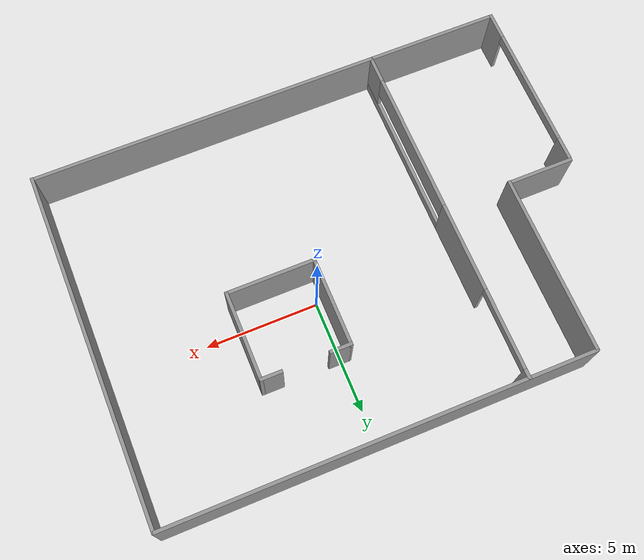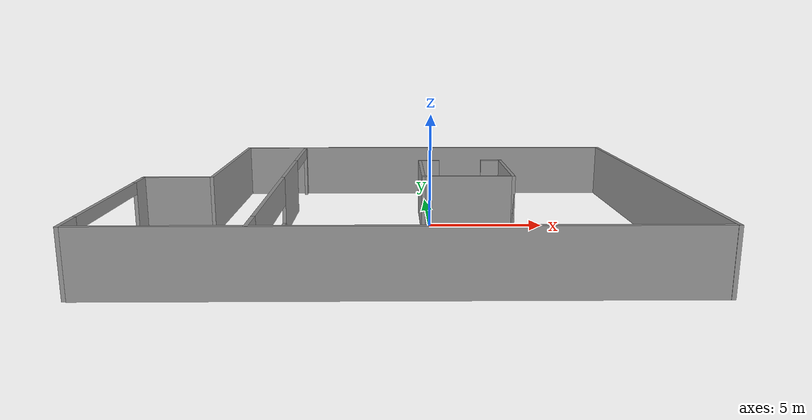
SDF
<?xml version='1.0'?>
<sdf version='1.7'>
  <model name='wall_test_costmapEx'>
    <pose>-1.43301 -1.16145 0 0 -0 0</pose>
    <link name='Wall_0'>
      <collision name='Wall_0_Collision'>
        <geometry>
          <box>
            <size>4 0.15 2.5</size>
          </box>
        </geometry>
        <pose>0 0 1.25 0 -0 0</pose>
      </collision>
      <visual name='Wall_0_Visual'>
        <pose>0 0 1.25 0 -0 0</pose>
        <geometry>
          <box>
            <size>4 0.15 2.5</size>
          </box>
        </geometry>
        <material>
          <script>
            <uri>file://media/materials/scripts/gazebo.material</uri>
            <name>Gazebo/Grey</name>
          </script>
          <ambient>1 1 1 1</ambient>
        </material>
        <meta>
          <layer>0</layer>
        </meta>
      </visual>
      <pose>3.01203 0.043501 0 0 -0 0</pose>
    </link>
    <link name='Wall_1'>
      <collision name='Wall_1_Collision'>
        <geometry>
          <box>
            <size>4 0.15 2.5</size>
          </box>
        </geometry>
        <pose>0 0 1.25 0 -0 0</pose>
      </collision>
      <visual name='Wall_1_Visual'>
        <pose>0 0 1.25 0 -0 0</pose>
        <geometry>
          <box>
            <size>4 0.15 2.5</size>
          </box>
        </geometry>
        <material>
          <script>
            <uri>file://media/materials/scripts/gazebo.material</uri>
            <name>Gazebo/Grey</name>
          </script>
          <ambient>1 1 1 1</ambient>
        </material>
        <meta>
          <layer>0</layer>
        </meta>
      </visual>
      <pose>4.93703 1.9685 0 0 -0 1.5708</pose>
    </link>
    <link name='Wall_16'>
      <collision name='Wall_16_Collision'>
        <geometry>
          <box>
            <size>15.75 0.15 2.5</size>
          </box>
        </geometry>
        <pose>0 0 1.25 0 -0 0</pose>
      </collision>
      <visual name='Wall_16_Visual'>
        <pose>0 0 1.25 0 -0 0</pose>
        <geometry>
          <box>
            <size>15.75 0.15 2.5</size>
          </box>
        </geometry>
        <material>
          <script>
            <uri>file://media/materials/scripts/gazebo.material</uri>
            <name>Gazebo/Grey</name>
          </script>
          <ambient>1 1 1 1</ambient>
        </material>
        <meta>
          <layer>0</layer>
        </meta>
      </visual>
      <pose>10.7653 -0.017827 0 0 -0 1.5708</pose>
    </link>
    <link name='Wall_18'>
      <pose>-4.86778 0.008032 0 0 -0 -1.5708</pose>
      <visual name='Wall_18_Visual_0'>
        <pose>-7.65185 0 1.25 0 -0 0</pose>
        <geometry>
          <box>
            <size>0.446291 0.15 2.5</size>
          </box>
        </geometry>
        <material>
          <script>
            <uri>file://media/materials/scripts/gazebo.material</uri>
            <name>Gazebo/Grey</name>
          </script>
          <ambient>1 1 1 1</ambient>
        </material>
        <meta>
          <layer>0</layer>
        </meta>
      </visual>
      <collision name='Wall_18_Collision_0'>
        <geometry>
          <box>
            <size>0.446291 0.15 2.5</size>
          </box>
        </geometry>
        <pose>-7.65185 0 1.25 0 -0 0</pose>
      </collision>
      <visual name='Wall_18_Visual_1'>
        <pose>-1.83169 0 1.25 0 -0 0</pose>
        <geometry>
          <box>
            <size>4.00641 0.15 2.5</size>
          </box>
        </geometry>
        <material>
          <script>
            <uri>file://media/materials/scripts/gazebo.material</uri>
            <name>Gazebo/Grey</name>
          </script>
          <ambient>1 1 1 1</ambient>
        </material>
        <meta>
          <layer>0</layer>
        </meta>
      </visual>
      <collision name='Wall_18_Collision_1'>
        <geometry>
          <box>
            <size>4.00641 0.15 2.5</size>
          </box>
        </geometry>
        <pose>-1.83169 0 1.25 0 -0 0</pose>
      </collision>
      <visual name='Wall_18_Visual_2'>
        <pose>4.02326 0 0.25 0 -0 0</pose>
        <geometry>
          <box>
            <size>7.70349 0.15 0.5</size>
          </box>
        </geometry>
        <material>
          <script>
            <uri>file://media/materials/scripts/gazebo.material</uri>
            <name>Gazebo/Grey</name>
          </script>
          <ambient>1 1 1 1</ambient>
        </material>
        <meta>
          <layer>0</layer>
        </meta>
      </visual>
      <collision name='Wall_18_Collision_2'>
        <geometry>
          <box>
            <size>7.70349 0.15 0.5</size>
          </box>
        </geometry>
        <pose>4.02326 0 0.25 0 -0 0</pose>
      </collision>
      <visual name='Wall_18_Visual_3'>
        <pose>7.23652 0 1.5 0 -0 0</pose>
        <geometry>
          <box>
            <size>1.27697 0.15 2</size>
          </box>
        </geometry>
        <material>
          <script>
            <uri>file://media/materials/scripts/gazebo.material</uri>
            <name>Gazebo/Grey</name>
          </script>
          <ambient>1 1 1 1</ambient>
        </material>
        <meta>
          <layer>0</layer>
        </meta>
      </visual>
      <collision name='Wall_18_Collision_3'>
        <geometry>
          <box>
            <size>1.27697 0.15 2</size>
          </box>
        </geometry>
        <pose>7.23652 0 1.5 0 -0 0</pose>
      </collision>
      <visual name='Wall_18_Visual_4'>
        <pose>3.38477 0 1.9 0 -0 0</pose>
        <geometry>
          <box>
            <size>6.42652 0.15 1.2</size>
          </box>
        </geometry>
        <material>
          <script>
            <uri>file://media/materials/scripts/gazebo.material</uri>
            <name>Gazebo/Grey</name>
          </script>
          <ambient>1 1 1 1</ambient>
        </material>
        <meta>
          <layer>0</layer>
        </meta>
      </visual>
      <collision name='Wall_18_Collision_4'>
        <geometry>
          <box>
            <size>6.42652 0.15 1.2</size>
          </box>
        </geometry>
        <pose>3.38477 0 1.9 0 -0 0</pose>
      </collision>
      <visual name='Wall_18_Visual_5'>
        <pose>-5.6318 0 2.25 0 -0 0</pose>
        <geometry>
          <box>
            <size>3.59381 0.15 0.5</size>
          </box>
        </geometry>
        <material>
          <script>
            <uri>file://media/materials/scripts/gazebo.material</uri>
            <name>Gazebo/Grey</name>
          </script>
          <ambient>1 1 1 1</ambient>
        </material>
        <meta>
          <layer>0</layer>
        </meta>
      </visual>
      <collision name='Wall_18_Collision_5'>
        <geometry>
          <box>
            <size>3.59381 0.15 0.5</size>
          </box>
        </geometry>
        <pose>-5.6318 0 2.25 0 -0 0</pose>
      </collision>
    </link>
    <link name='Wall_20'>
      <collision name='Wall_20_Collision'>
        <geometry>
          <box>
            <size>21.5 0.15 2.5</size>
          </box>
        </geometry>
        <pose>0 0 1.25 0 -0 0</pose>
      </collision>
      <visual name='Wall_20_Visual'>
        <pose>0 0 1.25 0 -0 0</pose>
        <geometry>
          <box>
            <size>21.5 0.15 2.5</size>
          </box>
        </geometry>
        <material>
          <script>
            <uri>file://media/materials/scripts/gazebo.material</uri>
            <name>Gazebo/Grey</name>
          </script>
          <ambient>1 1 1 1</ambient>
        </material>
        <meta>
          <layer>0</layer>
        </meta>
      </visual>
      <pose>0.05803 -7.80111 0 0 -0 0</pose>
    </link>
    <link name='Wall_22'>
      <collision name='Wall_22_Collision'>
        <geometry>
          <box>
            <size>18.75 0.15 2.5</size>
          </box>
        </geometry>
        <pose>0 0 1.25 0 -0 0</pose>
      </collision>
      <visual name='Wall_22_Visual'>
        <pose>0 0 1.25 0 -0 0</pose>
        <geometry>
          <box>
            <size>18.75 0.15 2.5</size>
          </box>
        </geometry>
        <material>
          <script>
            <uri>file://media/materials/scripts/gazebo.material</uri>
            <name>Gazebo/Grey</name>
          </script>
          <ambient>1 1 1 1</ambient>
        </material>
        <meta>
          <layer>0</layer>
        </meta>
      </visual>
      <pose>1.43772 7.81783 0 0 -0 3.14159</pose>
    </link>
    <link name='Wall_24'>
      <collision name='Wall_24_Collision'>
        <geometry>
          <box>
            <size>3 0.15 2.5</size>
          </box>
        </geometry>
        <pose>0 0 1.25 0 -0 0</pose>
      </collision>
      <visual name='Wall_24_Visual'>
        <pose>0 0 1.25 0 -0 0</pose>
        <geometry>
          <box>
            <size>3 0.15 2.5</size>
          </box>
        </geometry>
        <material>
          <script>
            <uri>file://media/materials/scripts/gazebo.material</uri>
            <name>Gazebo/Grey</name>
          </script>
          <ambient>1 1 1 1</ambient>
        </material>
        <meta>
          <layer>0</layer>
        </meta>
      </visual>
      <pose>-9.3197 -0.054008 0 0 -0 0</pose>
    </link>
    <link name='Wall_26'>
      <pose>-10.7653 -3.99249 0 0 -0 -1.5708</pose>
      <visual name='Wall_26_Visual_0'>
        <pose>-3.35556 0 1.25 0 -0 0</pose>
        <geometry>
          <box>
            <size>1.03888 0.15 2.5</size>
          </box>
        </geometry>
        <material>
          <script>
            <uri>file://media/materials/scripts/gazebo.material</uri>
            <name>Gazebo/Grey</name>
          </script>
          <ambient>1 1 1 1</ambient>
        </material>
        <meta>
          <layer>0</layer>
        </meta>
      </visual>
      <collision name='Wall_26_Collision_0'>
        <geometry>
          <box>
            <size>1.03888 0.15 2.5</size>
          </box>
        </geometry>
        <pose>-3.35556 0 1.25 0 -0 0</pose>
      </collision>
      <visual name='Wall_26_Visual_1'>
        <pose>3.25706 0 1.25 0 -0 0</pose>
        <geometry>
          <box>
            <size>1.23588 0.15 2.5</size>
          </box>
        </geometry>
        <material>
          <script>
            <uri>file://media/materials/scripts/gazebo.material</uri>
            <name>Gazebo/Grey</name>
          </script>
          <ambient>1 1 1 1</ambient>
        </material>
        <meta>
          <layer>0</layer>
        </meta>
      </visual>
      <collision name='Wall_26_Collision_1'>
        <geometry>
          <box>
            <size>1.23588 0.15 2.5</size>
          </box>
        </geometry>
        <pose>3.25706 0 1.25 0 -0 0</pose>
      </collision>
      <visual name='Wall_26_Visual_2'>
        <pose>-0.0985 0 2.25 0 -0 0</pose>
        <geometry>
          <box>
            <size>5.47523 0.15 0.5</size>
          </box>
        </geometry>
        <material>
          <script>
            <uri>file://media/materials/scripts/gazebo.material</uri>
            <name>Gazebo/Grey</name>
          </script>
          <ambient>1 1 1 1</ambient>
        </material>
        <meta>
          <layer>0</layer>
        </meta>
      </visual>
      <collision name='Wall_26_Collision_2'>
        <geometry>
          <box>
            <size>5.47523 0.15 0.5</size>
          </box>
        </geometry>
        <pose>-0.0985 0 2.25 0 -0 0</pose>
      </collision>
    </link>
    <link name='Wall_3'>
      <collision name='Wall_3_Collision'>
        <geometry>
          <box>
            <size>4 0.15 2.5</size>
          </box>
        </geometry>
        <pose>0 0 1.25 0 -0 0</pose>
      </collision>
      <visual name='Wall_3_Visual'>
        <pose>0 0 1.25 0 -0 0</pose>
        <geometry>
          <box>
            <size>4 0.15 2.5</size>
          </box>
        </geometry>
        <material>
          <script>
            <uri>file://media/materials/scripts/gazebo.material</uri>
            <name>Gazebo/Grey</name>
          </script>
          <ambient>1 1 1 1</ambient>
        </material>
        <meta>
          <layer>0</layer>
        </meta>
      </visual>
      <pose>1.08703 1.9685 0 0 -0 -1.5708</pose>
    </link>
    <link name='Wall_31'>
      <collision name='Wall_31_Collision'>
        <geometry>
          <box>
            <size>8 0.15 2.5</size>
          </box>
        </geometry>
        <pose>0 0 1.25 0 -0 0</pose>
      </collision>
      <visual name='Wall_31_Visual'>
        <pose>0 0 1.25 0 -0 0</pose>
        <geometry>
          <box>
            <size>8 0.15 2.5</size>
          </box>
        </geometry>
        <material>
          <script>
            <uri>file://media/materials/scripts/gazebo.material</uri>
            <name>Gazebo/Grey</name>
          </script>
          <ambient>1 1 1 1</ambient>
        </material>
        <meta>
          <layer>0</layer>
        </meta>
      </visual>
      <pose>-7.88586 3.85657 0 0 -0 -1.5708</pose>
    </link>
    <link name='Wall_5'>
      <collision name='Wall_5_Collision'>
        <geometry>
          <box>
            <size>1 0.15 2.5</size>
          </box>
        </geometry>
        <pose>0 0 1.25 0 -0 0</pose>
      </collision>
      <visual name='Wall_5_Visual'>
        <pose>0 0 1.25 0 -0 0</pose>
        <geometry>
          <box>
            <size>1 0.15 2.5</size>
          </box>
        </geometry>
        <material>
          <script>
            <uri>file://media/materials/scripts/gazebo.material</uri>
            <name>Gazebo/Grey</name>
          </script>
          <ambient>1 1 1 1</ambient>
        </material>
        <meta>
          <layer>0</layer>
        </meta>
      </visual>
      <pose>1.51203 3.8935 0 0 -0 0</pose>
    </link>
    <link name='Wall_9'>
      <collision name='Wall_9_Collision'>
        <geometry>
          <box>
            <size>1 0.15 2.5</size>
          </box>
        </geometry>
        <pose>0 0 1.25 0 -0 0</pose>
      </collision>
      <visual name='Wall_9_Visual'>
        <pose>0 0 1.25 0 -0 0</pose>
        <geometry>
          <box>
            <size>1 0.15 2.5</size>
          </box>
        </geometry>
        <material>
          <script>
            <uri>file://media/materials/scripts/gazebo.material</uri>
            <name>Gazebo/Grey</name>
          </script>
          <ambient>1 1 1 1</ambient>
        </material>
        <meta>
          <layer>0</layer>
        </meta>
      </visual>
      <pose>4.51203 3.8935 0 0 -0 3.14159</pose>
    </link>
    <static>1</static>
  </model>
</sdf>
